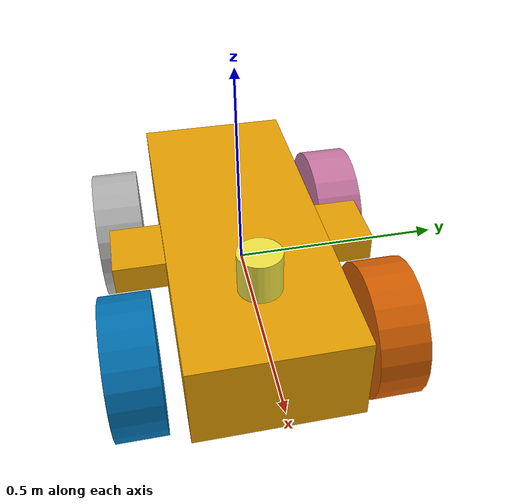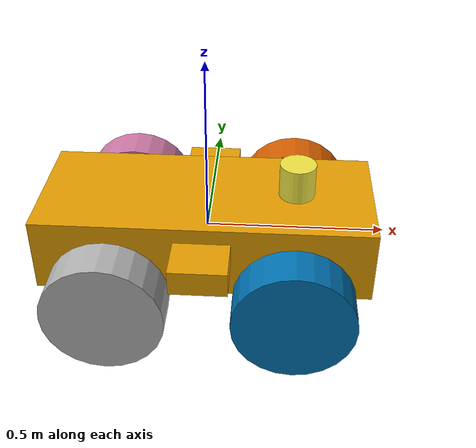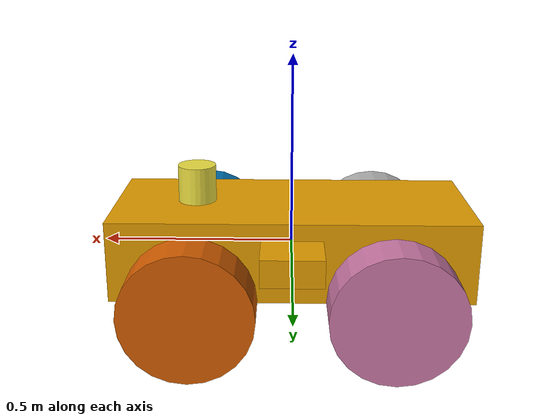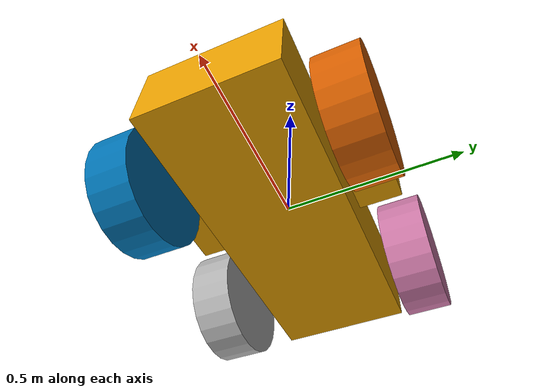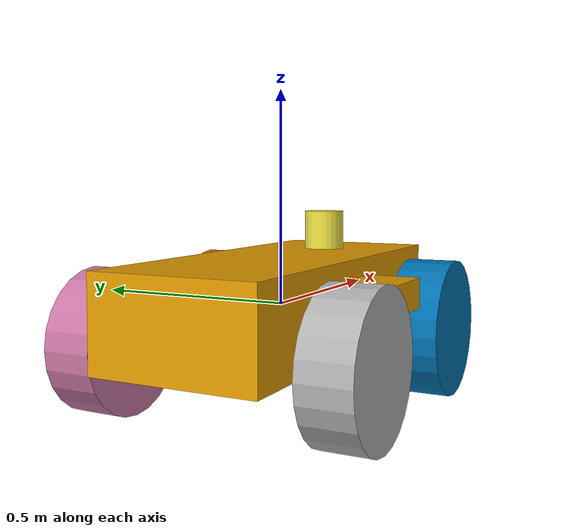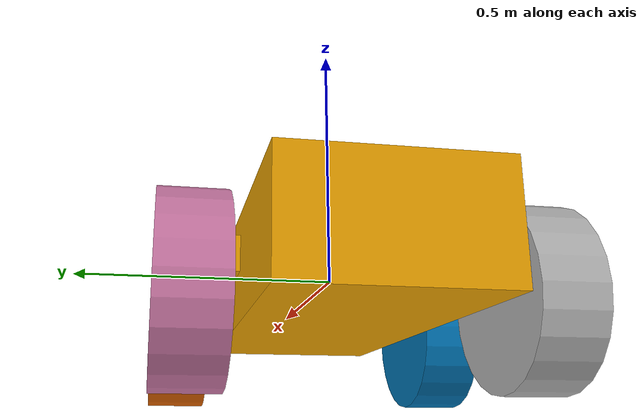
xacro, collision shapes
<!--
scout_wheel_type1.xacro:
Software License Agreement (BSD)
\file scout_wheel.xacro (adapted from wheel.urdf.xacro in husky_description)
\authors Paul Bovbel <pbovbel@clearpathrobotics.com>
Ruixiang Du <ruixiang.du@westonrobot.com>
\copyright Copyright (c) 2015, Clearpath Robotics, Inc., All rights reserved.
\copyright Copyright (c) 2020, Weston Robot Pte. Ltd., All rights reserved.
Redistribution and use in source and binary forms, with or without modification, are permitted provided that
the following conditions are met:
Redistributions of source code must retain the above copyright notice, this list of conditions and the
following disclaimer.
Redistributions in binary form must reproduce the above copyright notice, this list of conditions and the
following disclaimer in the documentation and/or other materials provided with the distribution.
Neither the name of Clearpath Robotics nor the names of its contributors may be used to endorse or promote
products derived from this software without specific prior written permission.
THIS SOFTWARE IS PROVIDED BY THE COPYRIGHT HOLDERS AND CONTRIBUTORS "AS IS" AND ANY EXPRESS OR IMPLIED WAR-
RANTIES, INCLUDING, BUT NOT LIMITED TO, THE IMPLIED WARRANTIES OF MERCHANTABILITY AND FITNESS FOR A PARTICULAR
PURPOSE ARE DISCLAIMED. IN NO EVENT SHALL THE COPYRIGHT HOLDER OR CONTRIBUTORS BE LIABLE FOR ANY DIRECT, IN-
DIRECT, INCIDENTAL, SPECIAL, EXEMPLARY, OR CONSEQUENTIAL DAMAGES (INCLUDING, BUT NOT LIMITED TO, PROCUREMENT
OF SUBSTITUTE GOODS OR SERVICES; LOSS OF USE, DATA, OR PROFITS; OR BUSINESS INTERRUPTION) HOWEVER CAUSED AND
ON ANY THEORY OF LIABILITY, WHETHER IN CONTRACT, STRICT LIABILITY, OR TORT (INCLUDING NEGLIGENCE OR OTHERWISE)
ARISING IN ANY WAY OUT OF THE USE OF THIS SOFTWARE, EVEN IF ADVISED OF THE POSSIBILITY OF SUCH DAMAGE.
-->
<?xml version="1.0"?>
<!-- Edited by jj22jjj4@yonsei.ac.kr -->
<robot name="scout_v2"
    xmlns:xacro="http://ros.org/wiki/xacro">

    <xacro:arg name="robot_namespace" default="/" />

    <xacro:include filename="$(find mobile_robot_description)/urdf/scout_wheel_type1.xacro" />
    <xacro:include filename="$(find mobile_robot_description)/urdf/scout_wheel_type2.xacro" />

    <!-- Variables -->
    <xacro:property name="M_PI" value="3.14159"/>

    <!-- Vehicle Geometries -->
    <xacro:property name="base_x_size" value="0.9250000" />
    <xacro:property name="base_y_size" value="0.380000" />
    <xacro:property name="base_z_size" value="0.210000" />

    <xacro:property name="wheelbase" value="0.498" />
    <xacro:property name="track" value="0.58306" />
    <xacro:property name="wheel_vertical_offset" value="-0.0702" />

    <xacro:property name="wheel_length" value="1.1653e-01" />
    <xacro:property name="wheel_radius" value="1.6459e-01" />

   <!-- Lidar -->
    <gazebo reference="sensor_laser">
        <sensor type="ray" name="head_hokuyo_sensor">
            <pose>0 0 0 0 0 0</pose>
            <visualize>false</visualize>
            <update_rate>20</update_rate>
            <ray>
                <scan>
                    <horizontal>
                        <samples>720</samples>
                        <resolution>1</resolution>
                        <min_angle>-1.570796</min_angle>
                        <max_angle>1.570796</max_angle>
                    </horizontal>
                </scan>
                <range>
                    <min>0.10</min>
                    <max>30.0</max>
                    <resolution>0.01</resolution>
                </range>
                <noise>
                    <type>gaussian</type>
                    <mean>0.0</mean>
                    <stddev>0.01</stddev>
                </noise>
            </ray>
            <plugin name="gazebo_ros_head_hokuyo_controller" filename="libgazebo_ros_laser.so">
                <topicName>/scout/laser/scan</topicName>
                <frameName>sensor_laser</frameName>
            </plugin>
        </sensor>
    </gazebo>

    <!-- Base link -->
    <link name="base_link">
        <visual>
            <origin xyz="0 0 0" rpy="0 0 0" />
            <geometry>
                <mesh filename="package://mobile_robot_description/meshes/base_link.dae" />
            </geometry>
        </visual>
        <collision>
            <origin xyz="0 0 0.008" rpy="0 0 0" />
            <geometry>
                <box size="${base_x_size} ${base_y_size} ${base_z_size}"/>
            </geometry>
        </collision>
        <collision>
            <origin xyz="0 0 ${base_z_size/6}" rpy="0 0 0" />
            <geometry>
                <box size="${base_x_size/6} ${base_y_size*1.65} ${base_z_size/3}"/>
            </geometry>
        </collision>
    </link>

    <link name="base_footprint"/>
    <joint name="base_footprint_joint" type="fixed">
        <origin xyz="0 0 ${wheel_radius}" rpy="0 0 0" />
        <parent link="base_link" />
        <child link="base_footprint" />
    </joint>

    <link name="inertial_link">
        <inertial>
            <mass value="40" />
            <origin xyz="0.0 0.0 0.0" />
            <inertia ixx="2.288641" ixy="0" ixz="0" iyy="5.103976" iyz="0" izz="3.431465" />
        </inertial>
    </link>

    <joint name="inertial_joint" type="fixed">
        <origin xyz="0 0 0" rpy="0 0 0" />
        <parent link="base_link" />
        <child link="inertial_link" />
    </joint>

    <link name="sensor_laser">
        <inertial>
            <origin xyz="0 0 0" rpy="0 0 0" />
            <mass value="1" />
            <inertia ixx="0.0071" iyy="0.0071" ixy="0" izz="0.00125" iyz="0" ixz="0" />
        </inertial>
        <visual>
            <origin xyz="0 0 0" rpy="0 0 0" />
            <geometry>
            <cylinder radius="0.05" length="0.1"/>
            </geometry>
        </visual>
        <collision>
            <origin xyz="0 0 0" rpy="0 0 0"/>
            <geometry>
            <cylinder radius="0.05" length="0.1"/>
            </geometry>
        </collision>
    </link>

    <joint name="joint_sensor_laser" type="fixed">
      <origin xyz="0.25 0 0.16" rpy="0 0 0"/>
      <parent link="base_link"/>
      <child link="sensor_laser"/>
    </joint>

    <!-- Scout wheel macros -->
    <!-- wheel labeled from 0 to 3, conter-clockwise, starting from front right wheel -->
    <!-- motor 1 and 2 (left side) are mechanically installed in a reversed direction -->
    <xacro:scout_wheel_type1 wheel_prefix="front_right">
        <origin xyz="${wheelbase/2} ${-track/2} ${wheel_vertical_offset}" rpy="3.14 0 0" />
    </xacro:scout_wheel_type1>
    <xacro:scout_wheel_type2 wheel_prefix="front_left">
        <origin xyz="${wheelbase/2} ${track/2} ${wheel_vertical_offset}" rpy="0 0 0" />
    </xacro:scout_wheel_type2>
    <xacro:scout_wheel_type1 wheel_prefix="rear_left">
        <origin xyz="${-wheelbase/2} ${track/2} ${wheel_vertical_offset}" rpy="0 0 0" />
    </xacro:scout_wheel_type1>
    <xacro:scout_wheel_type2 wheel_prefix="rear_right">
        <origin xyz="${-wheelbase/2} ${-track/2} ${wheel_vertical_offset}" rpy="3.14 0 0" />
    </xacro:scout_wheel_type2>

    <!-- Controller -->
    <gazebo>
        <plugin name="object_controller" filename="libgazebo_ros_planar_move.so">
            <commandTopic>cmd_vel</commandTopic>
            <odometryTopic>odom</odometryTopic>
            <odometryFrame>odom</odometryFrame>
            <odometryRate>20.0</odometryRate>
            <robotBaseFrame>base_link</robotBaseFrame>
        </plugin>
    </gazebo>
</robot>

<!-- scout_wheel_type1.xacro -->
<robot xmlns:xacro="http://ros.org/wiki/xacro" name="scout_wheel">

    <xacro:macro name="scout_wheel_type1" params="wheel_prefix *joint_pose">
        <link name="${wheel_prefix}_wheel_link">
            <inertial>
                <mass value="3" />
                <origin xyz="0 0 0" />
                <inertia ixx="0.7171" ixy="0" ixz="0" iyy="0.1361" iyz="0" izz="0.7171" />
            </inertial>
            <visual>
                <origin xyz="0 0 0" rpy="0 0 0" />
                <geometry>
                    <mesh filename="package://mobile_robot_description/meshes/wheel_type1.dae" />
                </geometry>
            </visual>
            <collision>
                <origin xyz="0 0 0" rpy="${M_PI/2} 0 0" />
                <geometry>
                    <cylinder length="${wheel_length}" radius="${wheel_radius}" />
                </geometry>
            </collision>
        </link>

        <joint name="${wheel_prefix}_wheel" type="fixed">
            <parent link="base_link"/>
            <child link="${wheel_prefix}_wheel_link"/>
            <xacro:insert_block name="joint_pose"/>
            <axis xyz="0 -1 0" rpy="0 0 0" />
        </joint>
    </xacro:macro>

</robot>

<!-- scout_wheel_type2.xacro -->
<robot xmlns:xacro="http://ros.org/wiki/xacro" name="scout_wheel">

    <xacro:macro name="scout_wheel_type2" params="wheel_prefix *joint_pose">
        <link name="${wheel_prefix}_wheel_link">
            <inertial>
                <mass value="3" />
                <origin xyz="0 0 0" />
                <inertia ixx="0.7171" ixy="0" ixz="0" iyy="0.1361" iyz="0" izz="0.7171" />
            </inertial>
            <visual>
                <origin xyz="0 0 0" rpy="0 0 0" />
                <geometry>
                    <mesh filename="package://mobile_robot_description/meshes/wheel_type2.dae" />
                </geometry>
            </visual>
            <collision>
                <origin xyz="0 0 0" rpy="${M_PI/2} 0 0" />
                <geometry>
                    <cylinder length="${wheel_length}" radius="${wheel_radius}" />
                </geometry>
            </collision>
        </link>

        <joint name="${wheel_prefix}_wheel" type="fixed">
            <parent link="base_link"/>
            <child link="${wheel_prefix}_wheel_link"/>
            <xacro:insert_block name="joint_pose"/>
            <axis xyz="0 -1 0" rpy="0 0 0" />
        </joint>
    </xacro:macro>

</robot>
